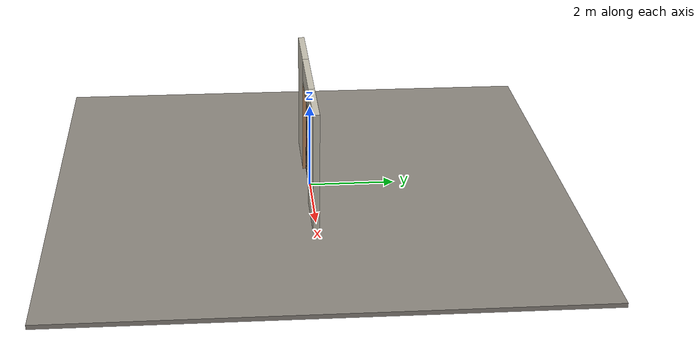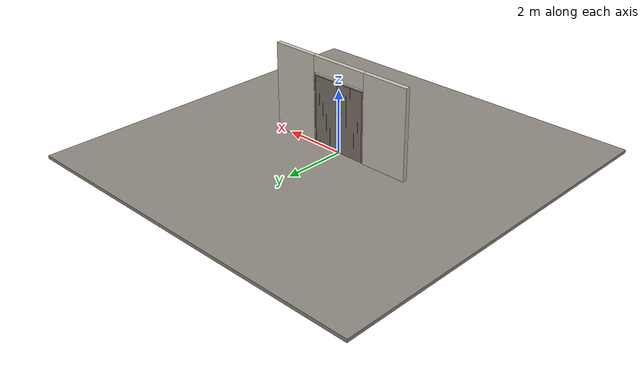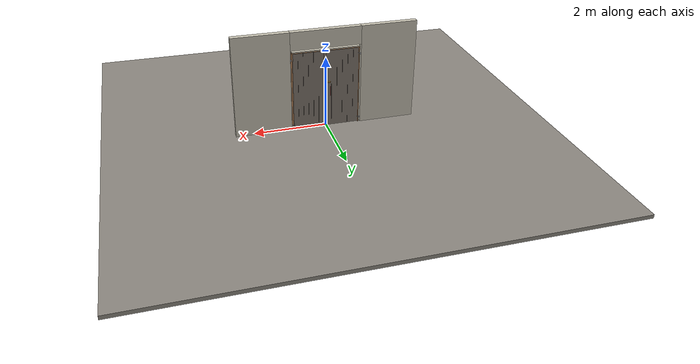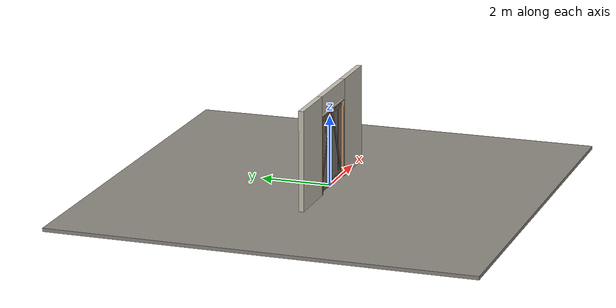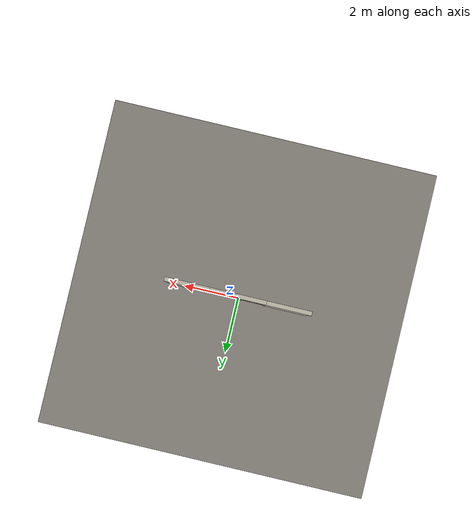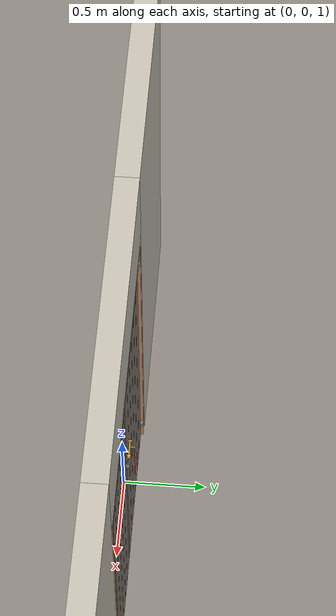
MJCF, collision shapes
<?xml version="1.0" ?>
<mujoco model="db0127_swing_double_full">
  <compiler angle="radian" meshdir="../../hardware" texturedir="../../textures" autolimits="true" inertiafromgeom="false"/>
  <option timestep="0.002" integrator="implicitfast" cone="elliptic" impratio="10" noslip_iterations="3">
    <flag multiccd="enable"/>
  </option>
  <size memory="16M"/>
  <default>
    <geom condim="4" solref="0.005 1" solimp="0.95 0.99 0.001"/>
    <joint solreflimit="0.005 1" solimplimit="0.95 0.99 0.001"/>
    <tendon solreflimit="0.005 1"/>
    <equality solref="0.002 1"/>
  </default>
  <visual>
    <headlight ambient="0.4 0.4 0.4" diffuse="0.7 0.7 0.7" specular="0.2 0.2 0.2"/>
    <quality shadowsize="4096"/>
    <map znear="0.01" zfar="60"/>
  </visual>
  <asset>
    <mesh name="pull_2b47e55ff8" file="pull_2b47e55ff8.obj"/>
    <mesh name="strap_hinge_118b895b75" file="strap_hinge_118b895b75.obj"/>
    <material name="mat_floor" rgba="0.55 0.53 0.5 1" specular="0.2" shininess="0.15" reflectance="0"/>
    <material name="mat_wall" rgba="0.78 0.76 0.7 1" specular="0.2" shininess="0.1" reflectance="0"/>
    <material name="mat_leaf_a" rgba="0.5 0.46 0.425 1" specular="0.2" shininess="0.15" reflectance="0"/>
    <material name="mat_leaf_a_brace" rgba="0.45 0.414 0.383 1" specular="0.2" shininess="0.2" reflectance="0"/>
    <material name="mat_hinge" rgba="0.65 0.66 0.68 1" specular="0.74" shininess="0.5" reflectance="0.36"/>
    <material name="mat_op_black_matte_metal" rgba="0.05 0.05 0.05 1" specular="0.38" shininess="0.3" reflectance="0.12"/>
    <material name="mat_op_brass" rgba="0.85 0.66 0.3 1" specular="0.8" shininess="0.75" reflectance="0.4"/>
    <material name="mat_leaf_b" rgba="0.5 0.46 0.425 1" specular="0.2" shininess="0.15" reflectance="0"/>
    <material name="mat_leaf_b_brace" rgba="0.45 0.414 0.383 1" specular="0.2" shininess="0.2" reflectance="0"/>
    <material name="mat_frame" rgba="0.75 0.55 0.38 1" specular="0.2" shininess="0.45" reflectance="0"/>
    <texture name="skybox" type="skybox" builtin="gradient" rgb1="0.6 0.7 0.85" rgb2="0.9 0.92 0.95" width="256" height="256"/>
  </asset>
  <worldbody>
    <light name="sun" pos="1.5 -2.5 4" dir="-0.3 0.5 -0.8" directional="true" diffuse="0.8 0.8 0.8" specular="0.3 0.3 0.3" castshadow="true"/>
    <light name="fill" pos="-1.5 2.5 3" dir="0.3 -0.5 -0.7" directional="true" diffuse="0.35 0.35 0.4" castshadow="false"/>
    <camera name="robot_view" pos="0 -2.730187 1.862413" xyaxes="1 0 0 0 0.26963 0.962964" fovy="52"/>
    <camera name="far_view" pos="0 2.669187 1.862413" xyaxes="-1 0 0 0 -0.26963 0.962964" fovy="52"/>
    <camera name="iso" pos="-2.051762 -2.298237 2.294363" xyaxes="0.741536 -0.670913 0 0.242917 0.268487 0.932151" fovy="46"/>
    <camera name="detail_handle" pos="0.0735 -0.867 1.33" xyaxes="0.97561 0.219512 0 -0.070934 0.315262 0.94635" fovy="38"/>
    <geom name="floor" type="box" size="6 6 0.05" pos="0 0 -0.05" material="mat_floor" group="0" contype="1" conaffinity="1" friction="0.8 0.005 0.0001" density="2400"/>
    <geom name="wall_left" type="box" size="0.76775 0.0725 1.4065" pos="-1.73225 -0.0305 1.4065" material="mat_wall" group="0" contype="1" conaffinity="1" friction="0.6 0.005 0.0001" density="800"/>
    <geom name="wall_right" type="box" size="0.76775 0.0725 1.4065" pos="1.73225 -0.0305 1.4065" material="mat_wall" group="0" contype="1" conaffinity="1" friction="0.6 0.005 0.0001" density="800"/>
    <geom name="wall_header" type="box" size="0.9645 0.0725 0.255" pos="0 -0.0305 2.558" material="mat_wall" group="0" contype="1" conaffinity="1" friction="0.6 0.005 0.0001" density="800"/>
    <geom name="hinge_pintle_0" type="cylinder" size="0.008 0.02" pos="-0.9015 0.029 0.133" material="mat_hinge" group="1" contype="0" conaffinity="0" density="7850"/>
    <geom name="hinge_pintle_1" type="cylinder" size="0.008 0.02" pos="-0.9015 0.029 2.033" material="mat_hinge" group="1" contype="0" conaffinity="0" density="7850"/>
    <geom name="hinge_pintle_0_2" type="cylinder" size="0.008 0.02" pos="0.9015 0.029 0.133" material="mat_hinge" group="1" contype="0" conaffinity="0" density="7850"/>
    <geom name="hinge_pintle_1_2" type="cylinder" size="0.008 0.02" pos="0.9015 0.029 2.033" material="mat_hinge" group="1" contype="0" conaffinity="0" density="7850"/>
    <geom name="jamb_l" type="box" size="0.0095 0.0725 1.1065" pos="-0.914 -0.0305 1.1065" material="mat_frame" group="0" contype="1" conaffinity="1" friction="0.6 0.005 0.0001" density="300"/>
    <geom name="jamb_r" type="box" size="0.0095 0.0725 1.1065" pos="0.914 -0.0305 1.1065" material="mat_frame" group="0" contype="1" conaffinity="1" friction="0.6 0.005 0.0001" density="300"/>
    <geom name="jamb_head" type="box" size="0.9235 0.0725 0.0095" pos="0 -0.0305 2.2225" material="mat_frame" group="0" contype="1" conaffinity="1" friction="0.6 0.005 0.0001" density="300"/>
    <geom name="head_stud" type="box" size="0.9235 0.0725 0.015" pos="0 -0.0305 2.247" material="mat_wall" group="0" contype="1" conaffinity="1" friction="0.6 0.005 0.0001" density="500"/>
    <geom name="hinge_pintle_0_strap_0" type="box" size="0.028 0.0064 0.016" pos="-0.937 0.029 0.133" material="mat_hinge" group="1" contype="0" conaffinity="0" density="7850"/>
    <geom name="hinge_pintle_0_strap_1" type="box" size="0.028 0.0064 0.016" pos="0.937 0.029 0.133" material="mat_hinge" group="1" contype="0" conaffinity="0" density="7850"/>
    <geom name="hinge_pintle_1_strap_0" type="box" size="0.028 0.0064 0.016" pos="-0.937 0.029 2.033" material="mat_hinge" group="1" contype="0" conaffinity="0" density="7850"/>
    <geom name="hinge_pintle_1_strap_1" type="box" size="0.028 0.0064 0.016" pos="0.937 0.029 2.033" material="mat_hinge" group="1" contype="0" conaffinity="0" density="7850"/>
    <site name="approach_point" pos="0 -1.5 0" quat="1 0 0 0" size="0.05" rgba="0.2 0.9 0.2 0.5" group="4"/>
    <site name="goal_point" pos="0 1.5 0" quat="1 0 0 0" size="0.05" rgba="0.2 0.9 0.2 0.5" group="4"/>
    <site name="door_plane_center" pos="0 0 1.1065" quat="1 0 0 0" size="0.02" rgba="0.2 0.9 0.2 0.5" group="4"/>
    <site name="approach_point_2" pos="0 -1.5 0" quat="1 0 0 0" size="0.05" rgba="0.2 0.9 0.2 0.5" group="4"/>
    <site name="goal_point_2" pos="0 1.5 0" quat="1 0 0 0" size="0.05" rgba="0.2 0.9 0.2 0.5" group="4"/>
    <site name="door_plane_center_2" pos="0 0 1.1065" quat="1 0 0 0" size="0.02" rgba="0.2 0.9 0.2 0.5" group="4"/>
    <site name="approach_point_3" pos="0 -1.5 0" quat="1 0 0 0" size="0.05" rgba="0.2 0.9 0.2 0.5" group="4"/>
    <site name="goal_point_3" pos="0 1.5 0" quat="1 0 0 0" size="0.05" rgba="0.2 0.9 0.2 0.5" group="4"/>
    <site name="door_plane_center_3" pos="0 0 1.1065" quat="1 0 0 0" size="0.02" rgba="0.2 0.9 0.2 0.5" group="4"/>
    <body name="leaf_a" pos="-0.9045 0 0">
      <inertial pos="0.441728 0.002566 1.108287" mass="43.845143" quat="0.501445 0.498248 -0.501728 0.498569" diaginertia="3.013017491 19.471949348 22.460768483"/>
      <joint name="leaf_a_hinge" type="hinge" axis="0 0 1" pos="0.003 0.029 0" limited="true" range="0 1.396263" damping="0.310682" frictionloss="6.283328" armature="0.02"/>
      <geom name="leaf_a_slab" type="box" size="0.45 0.022 1.1" pos="0.453 0 1.109" material="mat_leaf_a" group="0" contype="1" conaffinity="1" friction="0.45 0.005 0.0001" density="1"/>
      <geom name="leaf_a_plank_gap_1" type="box" size="0.002 0.023 1.09" pos="0.153 0 1.109" material="mat_leaf_a_brace" group="1" contype="0" conaffinity="0" density="1"/>
      <geom name="leaf_a_plank_gap_2" type="box" size="0.002 0.023 1.09" pos="0.303 0 1.109" material="mat_leaf_a_brace" group="1" contype="0" conaffinity="0" density="1"/>
      <geom name="leaf_a_plank_gap_3" type="box" size="0.002 0.023 1.09" pos="0.453 0 1.109" material="mat_leaf_a_brace" group="1" contype="0" conaffinity="0" density="1"/>
      <geom name="leaf_a_plank_gap_4" type="box" size="0.002 0.023 1.09" pos="0.603 0 1.109" material="mat_leaf_a_brace" group="1" contype="0" conaffinity="0" density="1"/>
      <geom name="leaf_a_plank_gap_5" type="box" size="0.002 0.023 1.09" pos="0.753 0 1.109" material="mat_leaf_a_brace" group="1" contype="0" conaffinity="0" density="1"/>
      <geom name="leaf_a_batten_12" type="box" size="0.42 0.01 0.045" pos="0.453 -0.032 0.129" material="mat_leaf_a_brace" group="1" contype="0" conaffinity="0" density="1"/>
      <geom name="leaf_a_batten_208" type="box" size="0.42 0.01 0.045" pos="0.453 -0.032 2.089" material="mat_leaf_a_brace" group="1" contype="0" conaffinity="0" density="1"/>
      <geom name="leaf_a_brace_z" type="box" size="0.947782 0.01 0.045" pos="0.453 -0.032 1.109" quat="0.835737 0 -0.549131 0" material="mat_leaf_a_brace" group="1" contype="0" conaffinity="0" density="1"/>
      <geom name="hinge_strap_0" type="mesh" mesh="strap_hinge_118b895b75" pos="0.003 0.025 0.159" material="mat_hinge" group="1" contype="0" conaffinity="0" density="7850"/>
      <geom name="hinge_strap_eye_0" type="cylinder" size="0.011 0.012" pos="0.003 0.029 0.159" material="mat_hinge" group="1" contype="0" conaffinity="0" density="7850"/>
      <geom name="hinge_strap_neck_0" type="box" size="0.012 0.006 0.006" pos="0.003 0.027 0.159" material="mat_hinge" group="1" contype="0" conaffinity="0" density="7850"/>
      <geom name="hinge_strap_1" type="mesh" mesh="strap_hinge_118b895b75" pos="0.003 0.025 2.059" material="mat_hinge" group="1" contype="0" conaffinity="0" density="7850"/>
      <geom name="hinge_strap_eye_1" type="cylinder" size="0.011 0.012" pos="0.003 0.029 2.059" material="mat_hinge" group="1" contype="0" conaffinity="0" density="7850"/>
      <geom name="hinge_strap_neck_1" type="box" size="0.012 0.006 0.006" pos="0.003 0.027 2.059" material="mat_hinge" group="1" contype="0" conaffinity="0" density="7850"/>
      <geom name="leaf_a_pull_n" type="mesh" mesh="pull_2b47e55ff8" pos="0.798 -0.022 1.05" quat="0.707107 0.707107 0 0" material="mat_op_black_matte_metal" group="1" contype="0" conaffinity="0" density="3000"/>
      <geom name="leaf_a_pull_col_n" type="capsule" size="0.006 0.13" pos="0.798 -0.067 1.05" material="mat_op_black_matte_metal" group="3" contype="1" conaffinity="1" rgba="0.8 0.3 0.3 0.25" friction="0.7 0.01 0.0001" density="3000"/>
      <geom name="leaf_a_pull_p" type="mesh" mesh="pull_2b47e55ff8" pos="0.798 0.022 1.05" quat="-0.707107 0.707107 0 0" material="mat_op_black_matte_metal" group="1" contype="0" conaffinity="0" density="3000"/>
      <geom name="leaf_a_pull_col_p" type="capsule" size="0.006 0.13" pos="0.798 0.067 1.05" material="mat_op_black_matte_metal" group="3" contype="1" conaffinity="1" rgba="0.8 0.3 0.3 0.25" friction="0.7 0.01 0.0001" density="3000"/>
      <geom name="leaf_a_aux_bolt_plate" type="box" size="0.0595 0.019 0.001" pos="0.8355 0.023 1.3" quat="0.707107 -0.707107 0 0" material="mat_op_brass" group="1" contype="0" conaffinity="0" density="7800"/>
      <geom name="leaf_a_aux_bolt_guide_0_leg_n" type="box" size="0.006 0.002 0.0125" pos="0.887 0.0345 1.311" quat="0.707107 -0.707107 0 0" material="mat_op_brass" group="1" contype="0" conaffinity="0" density="7800"/>
      <geom name="leaf_a_aux_bolt_guide_0_leg_p" type="box" size="0.006 0.002 0.0125" pos="0.887 0.0345 1.289" quat="0.707107 -0.707107 0 0" material="mat_op_brass" group="1" contype="0" conaffinity="0" density="7800"/>
      <geom name="leaf_a_aux_bolt_guide_0_bridge" type="box" size="0.006 0.013 0.002" pos="0.887 0.045 1.3" quat="0.707107 -0.707107 0 0" material="mat_op_brass" group="1" contype="0" conaffinity="0" density="7800"/>
      <geom name="leaf_a_aux_bolt_guide_1_leg_n" type="box" size="0.006 0.002 0.0125" pos="0.786 0.0345 1.311" quat="0.707107 -0.707107 0 0" material="mat_op_brass" group="1" contype="0" conaffinity="0" density="7800"/>
      <geom name="leaf_a_aux_bolt_guide_1_leg_p" type="box" size="0.006 0.002 0.0125" pos="0.786 0.0345 1.289" quat="0.707107 -0.707107 0 0" material="mat_op_brass" group="1" contype="0" conaffinity="0" density="7800"/>
      <geom name="leaf_a_aux_bolt_guide_1_bridge" type="box" size="0.006 0.013 0.002" pos="0.786 0.045 1.3" quat="0.707107 -0.707107 0 0" material="mat_op_brass" group="1" contype="0" conaffinity="0" density="7800"/>
      <site name="leaf_a_pull_grip_n" pos="0.798 -0.067 1.05" quat="1 0 0 0" size="0.012" rgba="0.2 0.9 0.2 0.5" group="4"/>
      <site name="leaf_a_pull_grip_p" pos="0.798 0.067 1.05" quat="1 0 0 0" size="0.012" rgba="0.2 0.9 0.2 0.5" group="4"/>
      <site name="leaf_a_edge_mid" pos="0.903 0 1.1" quat="1 0 0 0" size="0.02" rgba="0.2 0.9 0.2 0.5" group="4"/>
      <body name="leaf_a_aux_bolt" pos="0.903 0.034 1.3">
        <inertial pos="-0.068563 0.00492 0" mass="0.111784" quat="0.998595 0 0 -0.05299" diaginertia="0.000012212 0.000071985 0.000082309"/>
        <joint name="leaf_a_aux_bolt_slide" type="slide" axis="-1 0 0" limited="true" range="0 0.045" damping="1" frictionloss="1" armature="0.1" ref="0.045"/>
        <geom name="leaf_a_aux_bolt_rod" type="capsule" size="0.006 0.044" pos="-0.065 0 0" quat="0.707107 0 0.707107 0" material="mat_op_brass" group="0" contype="1" conaffinity="1" friction="0.6 0.005 0.0001" density="7850"/>
        <geom name="leaf_a_aux_bolt_knob" type="capsule" size="0.005 0.01" pos="-0.08 0.015 0" quat="0.707107 -0.707107 0 0" material="mat_op_brass" group="0" contype="1" conaffinity="1" friction="0.6 0.005 0.0001" density="7850"/>
        <geom name="leaf_a_aux_bolt_knob_end" type="sphere" size="0.00675" pos="-0.08 0.03 0" material="mat_op_brass" group="1" contype="0" conaffinity="0" density="7850"/>
        <site name="leaf_a_aux_bolt_grip" pos="-0.08 0.034 0" quat="1 0 0 0" size="0.012" rgba="0.2 0.9 0.2 0.5" group="4"/>
      </body>
    </body>
    <body name="leaf_b" pos="0.9045 0 0">
      <inertial pos="-0.406187 0.002546 1.109" mass="43.578273" quat="0.49833 0.501656 -0.498339 0.501665" diaginertia="2.540448837 19.796136386 22.318944139"/>
      <joint name="leaf_b_hinge" type="hinge" axis="0 0 -1" pos="-0.003 0.029 0" limited="true" range="0 0.001" damping="0.310682" frictionloss="6.283328" armature="0.02"/>
      <geom name="leaf_b_edge_1300_wall_n" type="box" size="0.03 0.024 0.01" pos="-0.873 0.002 1.3" material="mat_leaf_b" group="0" contype="1" conaffinity="1" friction="0.6 0.005 0.0001" density="1"/>
      <geom name="leaf_b_edge_1300_wall_p" type="box" size="0.022 0.003 0.01" pos="-0.881 0.045 1.3" material="mat_leaf_b" group="0" contype="1" conaffinity="1" friction="0.6 0.005 0.0001" density="1"/>
      <geom name="leaf_b_edge_1300_back" type="box" size="0.009 0.008 0.01" pos="-0.852 0.034 1.3" material="mat_leaf_b" group="0" contype="1" conaffinity="1" friction="0.6 0.005 0.0001" density="1"/>
      <geom name="leaf_b_edge_seg_0" type="box" size="0.03 0.022 0.6405" pos="-0.873 0 0.6495" material="mat_leaf_b" group="0" contype="1" conaffinity="1" friction="0.6 0.005 0.0001" density="1"/>
      <geom name="leaf_b_edge_seg_1" type="box" size="0.03 0.022 0.4495" pos="-0.873 0 1.7595" material="mat_leaf_b" group="0" contype="1" conaffinity="1" friction="0.6 0.005 0.0001" density="1"/>
      <geom name="leaf_b_slab" type="box" size="0.42 0.022 1.1" pos="-0.423 0 1.109" material="mat_leaf_b" group="0" contype="1" conaffinity="1" friction="0.45 0.005 0.0001" density="1"/>
      <geom name="leaf_b_plank_gap_1" type="box" size="0.002 0.023 1.09" pos="-0.143 0 1.109" material="mat_leaf_b_brace" group="1" contype="0" conaffinity="0" density="1"/>
      <geom name="leaf_b_plank_gap_2" type="box" size="0.002 0.023 1.09" pos="-0.283 0 1.109" material="mat_leaf_b_brace" group="1" contype="0" conaffinity="0" density="1"/>
      <geom name="leaf_b_plank_gap_3" type="box" size="0.002 0.023 1.09" pos="-0.423 0 1.109" material="mat_leaf_b_brace" group="1" contype="0" conaffinity="0" density="1"/>
      <geom name="leaf_b_plank_gap_4" type="box" size="0.002 0.023 1.09" pos="-0.563 0 1.109" material="mat_leaf_b_brace" group="1" contype="0" conaffinity="0" density="1"/>
      <geom name="leaf_b_plank_gap_5" type="box" size="0.002 0.023 1.09" pos="-0.703 0 1.109" material="mat_leaf_b_brace" group="1" contype="0" conaffinity="0" density="1"/>
      <geom name="leaf_b_batten_12" type="box" size="0.39 0.01 0.045" pos="-0.423 -0.032 0.129" material="mat_leaf_b_brace" group="1" contype="0" conaffinity="0" density="1"/>
      <geom name="leaf_b_batten_208" type="box" size="0.39 0.01 0.045" pos="-0.423 -0.032 2.089" material="mat_leaf_b_brace" group="1" contype="0" conaffinity="0" density="1"/>
      <geom name="leaf_b_brace_z" type="box" size="0.936255 0.01 0.045" pos="-0.423 -0.032 1.109" quat="0.828067 0 0.560629 0" material="mat_leaf_b_brace" group="1" contype="0" conaffinity="0" density="1"/>
      <geom name="hinge_strap_0_2" type="mesh" mesh="strap_hinge_118b895b75" pos="-0.003 0.025 0.159" quat="0 0 0 1" material="mat_hinge" group="1" contype="0" conaffinity="0" density="7850"/>
      <geom name="hinge_strap_eye_0_2" type="cylinder" size="0.011 0.012" pos="-0.003 0.029 0.159" material="mat_hinge" group="1" contype="0" conaffinity="0" density="7850"/>
      <geom name="hinge_strap_neck_0_2" type="box" size="0.012 0.006 0.006" pos="-0.003 0.027 0.159" material="mat_hinge" group="1" contype="0" conaffinity="0" density="7850"/>
      <geom name="hinge_strap_1_2" type="mesh" mesh="strap_hinge_118b895b75" pos="-0.003 0.025 2.059" quat="0 0 0 1" material="mat_hinge" group="1" contype="0" conaffinity="0" density="7850"/>
      <geom name="hinge_strap_eye_1_2" type="cylinder" size="0.011 0.012" pos="-0.003 0.029 2.059" material="mat_hinge" group="1" contype="0" conaffinity="0" density="7850"/>
      <geom name="hinge_strap_neck_1_2" type="box" size="0.012 0.006 0.006" pos="-0.003 0.027 2.059" material="mat_hinge" group="1" contype="0" conaffinity="0" density="7850"/>
      <site name="leaf_b_edge_mid" pos="-0.903 0 1.1" quat="1 0 0 0" size="0.02" rgba="0.2 0.9 0.2 0.5" group="4"/>
    </body>
  </worldbody>
  <sensor>
    <jointpos name="leaf_a_hinge_pos" joint="leaf_a_hinge"/>
    <jointvel name="leaf_a_hinge_vel" joint="leaf_a_hinge"/>
    <jointpos name="leaf_a_aux_bolt_slide_pos" joint="leaf_a_aux_bolt_slide"/>
    <jointvel name="leaf_a_aux_bolt_slide_vel" joint="leaf_a_aux_bolt_slide"/>
    <jointpos name="leaf_b_hinge_pos" joint="leaf_b_hinge"/>
    <jointvel name="leaf_b_hinge_vel" joint="leaf_b_hinge"/>
  </sensor>
</mujoco>
